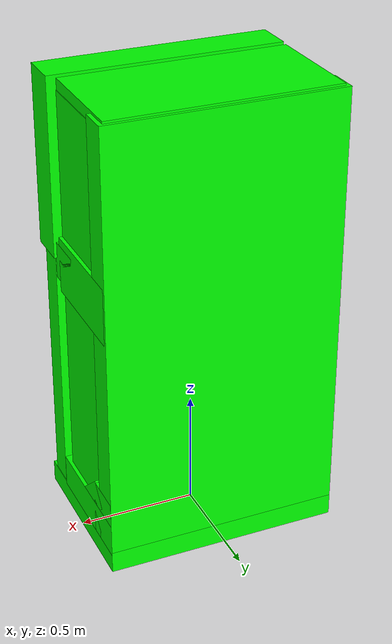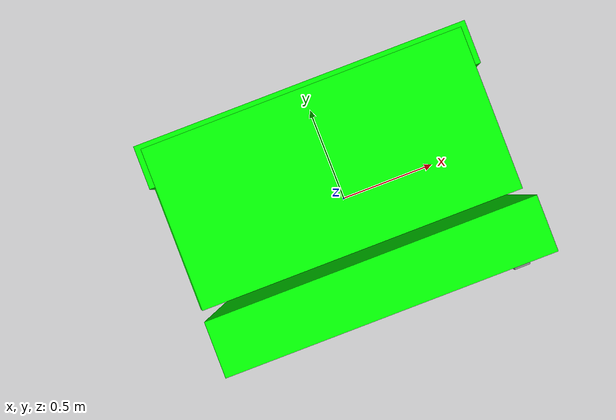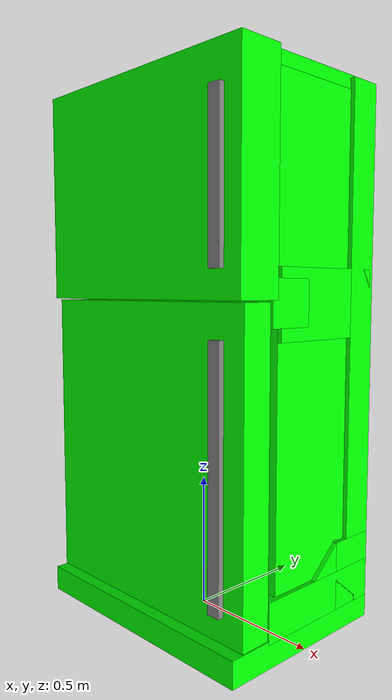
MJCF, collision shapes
<mujoco model="Fridge_1">
  <compiler angle="radian" boundmass="0.01"/>

  <default>
    <default class="/">
      <default class="__VISUAL_MJT__">
        <geom contype="0" conaffinity="0"/>
      </default>
      <default class="__STRUCTURAL_MJT__">
        <geom contype="8" conaffinity="15" group="4" friction="0.9 0.9 0.001" solref="0.025" solimp="0.998 0.998" density="500"/>
      </default>
      <default class="__DYNAMIC_MJT__">
        <geom conaffinity="15" group="4" friction="0.9 0.9 0.001" solref="0.025" solimp="0.998 0.998" density="500"/>
      </default>
      <default class="__ARTICULABLE_DYNAMIC_MJT__">
        <geom contype="0" conaffinity="7" group="4" friction="0.9 0.9 0.001" solref="0.025" solimp="0.998 0.998" density="500"/>
      </default>
    </default>
  </default>

  <asset>
    <texture type="2d" name="Fridge_Secondary1_Mat" file="assets/BrushedAluminum_AlbedoTransparency.png"/>
    <texture type="2d" name="Fridge_Decal_Mat" file="assets/Fridge_Decal_AlbedoTransparency.png"/>
    <material name="material_Fridge_Window_Mat" class="/" rgba="0.397059 0.397059 0.397059 0.166"/>
    <material name="material_Fridge_Interior1_Mat" class="/" rgba="0.819608 0.819608 0.819608 1"/>
    <material name="material_Fridge_Metal_Mat" class="/" texture="Fridge_Secondary1_Mat" rgba="0.929412 0.929412 0.929412 1" metallic="1" roughness="0.11"/>
    <material name="material_Fridge_Secondary1_Mat" class="/" texture="Fridge_Secondary1_Mat" rgba="0.870588 0.870588 0.870588 1" metallic="1" roughness="0.23"/>
    <material name="material_Fridge_Primary1_Mat" class="/"/>
    <material name="material_Fridge_Decal_Mat" class="/" texture="Fridge_Decal_Mat"/>
    <mesh name="Fridge_1_FridgeBodyMesh_daf6b078_3" class="/" content_type="model/obj" file="assets/Fridge_1_FridgeBodyMesh_daf6b078/Fridge_1_FridgeBodyMesh_daf6b078_3.obj" inertia="shell"/>
    <mesh name="Fridge_1_FridgeBodyMesh_daf6b078_4" class="/" content_type="model/obj" file="assets/Fridge_1_FridgeBodyMesh_daf6b078/Fridge_1_FridgeBodyMesh_daf6b078_4.obj"/>
    <mesh name="Fridge_1_FridgeBodyMesh_daf6b078_5" class="/" content_type="model/obj" file="assets/Fridge_1_FridgeBodyMesh_daf6b078/Fridge_1_FridgeBodyMesh_daf6b078_5.obj"/>
    <mesh name="Fridge_1_FridgeBodyMesh_daf6b078_6" class="/" content_type="model/obj" file="assets/Fridge_1_FridgeBodyMesh_daf6b078/Fridge_1_FridgeBodyMesh_daf6b078_6.obj"/>
    <mesh name="Fridge_1_Mesh_77a1be5e_1" class="/" content_type="model/obj" file="assets/Fridge_1_Mesh_77a1be5e/Fridge_1_Mesh_77a1be5e_1.obj" inertia="shell"/>
    <mesh name="Fridge_1_Mesh_77a1be5e_3" class="/" content_type="model/obj" file="assets/Fridge_1_Mesh_77a1be5e/Fridge_1_Mesh_77a1be5e_3.obj" inertia="shell"/>
    <mesh name="Fridge_1_Mesh_77a1be5e_5" class="/" content_type="model/obj" file="assets/Fridge_1_Mesh_77a1be5e/Fridge_1_Mesh_77a1be5e_5.obj"/>
    <mesh name="Fridge_1_Mesh_77a1be5e_6" class="/" content_type="model/obj" file="assets/Fridge_1_Mesh_77a1be5e/Fridge_1_Mesh_77a1be5e_6.obj"/>
    <mesh name="Fridge_1_fridge_freezerdoor_handle_a1_80b0bee5" class="/" content_type="model/obj" file="assets/Fridge_1_fridge_freezerdoor_handle_a1_80b0bee5/Fridge_1_fridge_freezerdoor_handle_a1_80b0bee5.obj"/>
    <mesh name="Fridge_1_Mesh_78210b38_3" class="/" content_type="model/obj" file="assets/Fridge_1_Mesh_78210b38/Fridge_1_Mesh_78210b38_3.obj" inertia="shell"/>
    <mesh name="Fridge_1_Mesh_78210b38_5" class="/" content_type="model/obj" file="assets/Fridge_1_Mesh_78210b38/Fridge_1_Mesh_78210b38_5.obj"/>
    <mesh name="Fridge_1_Mesh_78210b38_6" class="/" content_type="model/obj" file="assets/Fridge_1_Mesh_78210b38/Fridge_1_Mesh_78210b38_6.obj"/>
    <mesh name="Fridge_1_fridge_maindoor_handle_a1_fa5364a9" class="/" content_type="model/obj" file="assets/Fridge_1_fridge_maindoor_handle_a1_fa5364a9/Fridge_1_fridge_maindoor_handle_a1_fa5364a9.obj"/>
  </asset>

  <worldbody>
    <!-- Initial pose: global (0,0,0.982), rotation +90° about X (deg). -->
    <body name="Fridge_1" pos="0 0 0.982" quat="0.707107 0.707107 0 0">
      <body name="Fridge_1_FridgeBodyMesh_daf6b078" pos="0.00583 -0.97925 -0.08206">
        <geom name="Fridge_1_FridgeBodyMesh_daf6b078_3" class="__VISUAL_MJT__" type="mesh" mass="1e-08" material="material_Fridge_Interior1_Mat" mesh="Fridge_1_FridgeBodyMesh_daf6b078_3"/>
        <geom name="Fridge_1_FridgeBodyMesh_daf6b078_4" class="__VISUAL_MJT__" type="mesh" mass="1e-08" material="material_Fridge_Metal_Mat" mesh="Fridge_1_FridgeBodyMesh_daf6b078_4"/>
        <geom name="Fridge_1_FridgeBodyMesh_daf6b078_5" class="__VISUAL_MJT__" type="mesh" mass="1e-08" material="material_Fridge_Secondary1_Mat" mesh="Fridge_1_FridgeBodyMesh_daf6b078_5"/>
        <geom name="Fridge_1_FridgeBodyMesh_daf6b078_6" class="__VISUAL_MJT__" type="mesh" mass="1e-08" material="material_Fridge_Primary1_Mat" mesh="Fridge_1_FridgeBodyMesh_daf6b078_6"/>
        <geom name="Fridge_1_FridgeBodyMesh_daf6b078_PrimitiveCollider_0" class="__DYNAMIC_MJT__" size="0.5 0.0468114 0.358147" pos="0 0.0468114 0.0823707" quat="0 1 0 0" type="box" density="100" rgba="0 1 0 1"/>
        <geom name="Fridge_1_FridgeBodyMesh_daf6b078_PrimitiveCollider_1" class="__DYNAMIC_MJT__" size="0.5 0.0707055 0.274517" pos="0 0.152343 -0.00125849" quat="0 1 0 0" type="box" density="100" rgba="0 1 0 1"/>
        <geom name="Fridge_1_FridgeBodyMesh_daf6b078_PrimitiveCollider_2" class="__DYNAMIC_MJT__" size="0.5 0.0587584 0.105233" pos="0 0.221077 -0.0544354" quat="-0.34542 0.938448 0 0" type="box" density="100" rgba="0 1 0 1"/>
        <geom name="Fridge_1_FridgeBodyMesh_daf6b078_PrimitiveCollider_3" class="__DYNAMIC_MJT__" size="0.5 0.123386 0.0936805" pos="0 0.205024 -0.182095" quat="0 1 0 0" type="box" density="100" rgba="0 1 0 1"/>
        <geom name="Fridge_1_FridgeBodyMesh_daf6b078_PrimitiveCollider_4" class="__DYNAMIC_MJT__" size="0.5 0.93084 0.0646122" pos="0 1.01248 -0.211164" quat="0 1 0 0" type="box" density="100" rgba="0 1 0 1"/>
        <geom name="Fridge_1_FridgeBodyMesh_daf6b078_PrimitiveCollider_5" class="__DYNAMIC_MJT__" size="0.5 0.119771 0.243003" pos="0 1.17629 -0.0176091" quat="0 1 0 0" type="box" density="100" rgba="0 1 0 1"/>
        <geom name="Fridge_1_FridgeBodyMesh_daf6b078_PrimitiveCollider_6" class="__DYNAMIC_MJT__" size="0.5 0.0791795 0.0891342" pos="0 1.18082 0.178333" quat="0 1 0 0" type="box" density="100" rgba="0 1 0 1"/>
        <geom name="Fridge_1_FridgeBodyMesh_daf6b078_PrimitiveCollider_7" class="__DYNAMIC_MJT__" size="0.43622 0.00982689 0.179937" pos="0 1.48415 0.00460739" quat="0 1 0 0" type="box" density="100" rgba="0 1 0 1"/>
        <geom name="Fridge_1_FridgeBodyMesh_daf6b078_PrimitiveCollider_8" class="__DYNAMIC_MJT__" size="0.43622 0.00982689 0.179937" pos="0 0.780554 0.00460739" quat="0 1 0 0" type="box" density="100" rgba="0 1 0 1"/>
        <geom name="Fridge_1_FridgeBodyMesh_daf6b078_PrimitiveCollider_9" class="__DYNAMIC_MJT__" size="0.43622 0.00982689 0.179937" pos="0 0.521154 0.00460739" quat="0 1 0 0" type="box" density="100" rgba="0 1 0 1"/>
        <geom name="Fridge_1_FridgeBodyMesh_daf6b078_PrimitiveCollider_10" class="__DYNAMIC_MJT__" size="0.0561153 0.912807 0.243003" pos="-0.438222 0.992484 -0.0176091" quat="0 1 0 0" type="box" density="100" rgba="0 1 0 1"/>
        <geom name="Fridge_1_FridgeBodyMesh_daf6b078_PrimitiveCollider_11" class="__DYNAMIC_MJT__" size="0.0561153 0.912807 0.243003" pos="0.427778 0.992484 -0.0176091" quat="0 1 0 0" type="box" density="100" rgba="0 1 0 1"/>
        <geom name="Fridge_1_FridgeBodyMesh_daf6b078_PrimitiveCollider_12" class="__DYNAMIC_MJT__" size="0.481471 0.140176 0.243003" pos="0.000357258 1.81277 -0.0176091" quat="0 1 0 0" type="box" density="100" rgba="0 1 0 1"/>
        <site name="Fridge_1_FridgeBodyMesh_daf6b078_Receptacle_0" class="/" pos="0.005 0.629325 0.0233116" quat="0 1 0 0" size="0.357609 0.0962296 0.172328" type="box" rgba="1 0 0 1"/>
        <site name="Fridge_1_FridgeBodyMesh_daf6b078_Receptacle_1" class="/" pos="0.00500013 1.37796 0.0318033" quat="0 1 0 0" size="0.384375 0.0840883 0.180819" type="box" rgba="1 0 0 1"/>
        <site name="Fridge_1_FridgeBodyMesh_daf6b078_Receptacle_2" class="/" pos="0.005 0.885625 0.0233116" quat="0 1 0 0" size="0.357609 0.0962296 0.172328" type="box" rgba="1 0 0 1"/>
        <site name="Fridge_1_FridgeBodyMesh_daf6b078_Receptacle_3" class="/" pos="0.00500013 1.57896 0.00807125" quat="0 1 0 0" size="0.384375 0.0840883 0.157087" type="box" rgba="1 0 0 1"/>
        <body name="Fridge_1_Mesh_77a1be5e" pos="-0.485672 1.56042 0.261416">
          <joint name="Fridge_1_joint" class="/" pos="0 0 0" axis="0 -1 0" stiffness="1" range="0 1.5708" armature="0.109" damping="9" frictionloss="10"/>
          <geom name="Fridge_1_Mesh_77a1be5e_1" class="__VISUAL_MJT__" type="mesh" mass="1e-08" material="material_Fridge_Decal_Mat" mesh="Fridge_1_Mesh_77a1be5e_1"/>
          <geom name="Fridge_1_Mesh_77a1be5e_3" class="__VISUAL_MJT__" type="mesh" mass="1e-08" material="material_Fridge_Interior1_Mat" mesh="Fridge_1_Mesh_77a1be5e_3"/>
          <geom name="Fridge_1_Mesh_77a1be5e_5" class="__VISUAL_MJT__" type="mesh" mass="1e-08" material="material_Fridge_Secondary1_Mat" mesh="Fridge_1_Mesh_77a1be5e_5"/>
          <geom name="Fridge_1_Mesh_77a1be5e_6" class="__VISUAL_MJT__" type="mesh" mass="1e-08" material="material_Fridge_Primary1_Mat" mesh="Fridge_1_Mesh_77a1be5e_6"/>
          <geom name="Fridge_1_Mesh_77a1be5e_PrimitiveCollider_0" class="__DYNAMIC_MJT__" size="0.5 0.38125 0.0846" pos="0.498 0.012 0.0799" quat="0 1 0 0" type="box" density="80" rgba="0 1 0 1"/>
          <body name="Fridge_1_fridge_freezerdoor_handle_a1_80b0bee5" pos="0.905033 -0.0068779 0.113278">
            <geom name="Fridge_1_fridge_freezerdoor_handle_a1_80b0bee5" class="__VISUAL_MJT__" type="mesh" mass="1e-08" material="material_Fridge_Secondary1_Mat" mesh="Fridge_1_fridge_freezerdoor_handle_a1_80b0bee5"/>
            <geom name="Fridge_1_fridge_freezerdoor_handle_a1_80b0bee5_grip_collision" class="__DYNAMIC_MJT__" type="box" pos="0.00746 0 0.069" size="0.0243 0.267 0.010" density="100"/>
          </body>
        </body>
        <body name="Fridge_1_Mesh_78210b38" pos="-0.485672 0.651082 0.261417">
          <joint name="Fridge_1_Mesh_78210b38__1" class="/" pos="0 0 0" axis="0 -1 0" range="0 1.5708" armature="0.068" damping="8" frictionloss="10"/>
          <geom name="Fridge_1_Mesh_78210b38_3" class="__VISUAL_MJT__" type="mesh" mass="1e-08" material="material_Fridge_Interior1_Mat" mesh="Fridge_1_Mesh_78210b38_3"/>
          <geom name="Fridge_1_Mesh_78210b38_5" class="__VISUAL_MJT__" type="mesh" mass="1e-08" material="material_Fridge_Secondary1_Mat" mesh="Fridge_1_Mesh_78210b38_5"/>
          <geom name="Fridge_1_Mesh_78210b38_6" class="__VISUAL_MJT__" type="mesh" mass="1e-08" material="material_Fridge_Primary1_Mat" mesh="Fridge_1_Mesh_78210b38_6"/>
          <geom name="Fridge_1_Mesh_78210b38_PrimitiveCollider_0" class="__DYNAMIC_MJT__" size="0.5 0.544218 0.0585486185968043" pos="0.485 -0.00999999 0.07522652225692109" quat="0 1 0 0" type="box" density="70" rgba="0 1 0 1"/>
          <body name="Fridge_1_fridge_maindoor_handle_a1_fa5364a9" pos="0.905033 -0.00864816 0.113277">
            <geom name="Fridge_1_fridge_maindoor_handle_a1_fa5364a9" class="__VISUAL_MJT__" type="mesh" mass="1e-08" material="material_Fridge_Secondary1_Mat" mesh="Fridge_1_fridge_maindoor_handle_a1_fa5364a9"/>
            <geom name="Fridge_1_fridge_maindoor_handle_a1_fa5364a9_grip_collision" class="__DYNAMIC_MJT__" type="box" pos="0.00746 0 0.069" size="0.0243 0.430 0.010" density="100"/>
          </body>
        </body>
      </body>
    </body>
  </worldbody>

  <contact>
    <exclude name="//unnamed_contact_0" body1="Fridge_1_FridgeBodyMesh_daf6b078" body2="Fridge_1_Mesh_77a1be5e"/>
    <exclude body1="Fridge_1_FridgeBodyMesh_daf6b078" body2="Fridge_1_fridge_freezerdoor_handle_a1_80b0bee5"/>
    <exclude name="//unnamed_contact_1" body1="Fridge_1_FridgeBodyMesh_daf6b078" body2="Fridge_1_Mesh_78210b38"/>
    <exclude body1="Fridge_1_FridgeBodyMesh_daf6b078" body2="Fridge_1_fridge_maindoor_handle_a1_fa5364a9"/>
    <exclude body1="Fridge_1_Mesh_77a1be5e" body2="Fridge_1_fridge_freezerdoor_handle_a1_80b0bee5"/>
    <exclude body1="Fridge_1_Mesh_77a1be5e" body2="Fridge_1_Mesh_78210b38"/>
    <exclude body1="Fridge_1_Mesh_77a1be5e" body2="Fridge_1_fridge_maindoor_handle_a1_fa5364a9"/>
    <exclude body1="Fridge_1_fridge_freezerdoor_handle_a1_80b0bee5" body2="Fridge_1_Mesh_78210b38"/>
    <exclude body1="Fridge_1_fridge_freezerdoor_handle_a1_80b0bee5" body2="Fridge_1_fridge_maindoor_handle_a1_fa5364a9"/>
    <exclude body1="Fridge_1_Mesh_78210b38" body2="Fridge_1_fridge_maindoor_handle_a1_fa5364a9"/>
  </contact>
</mujoco>
